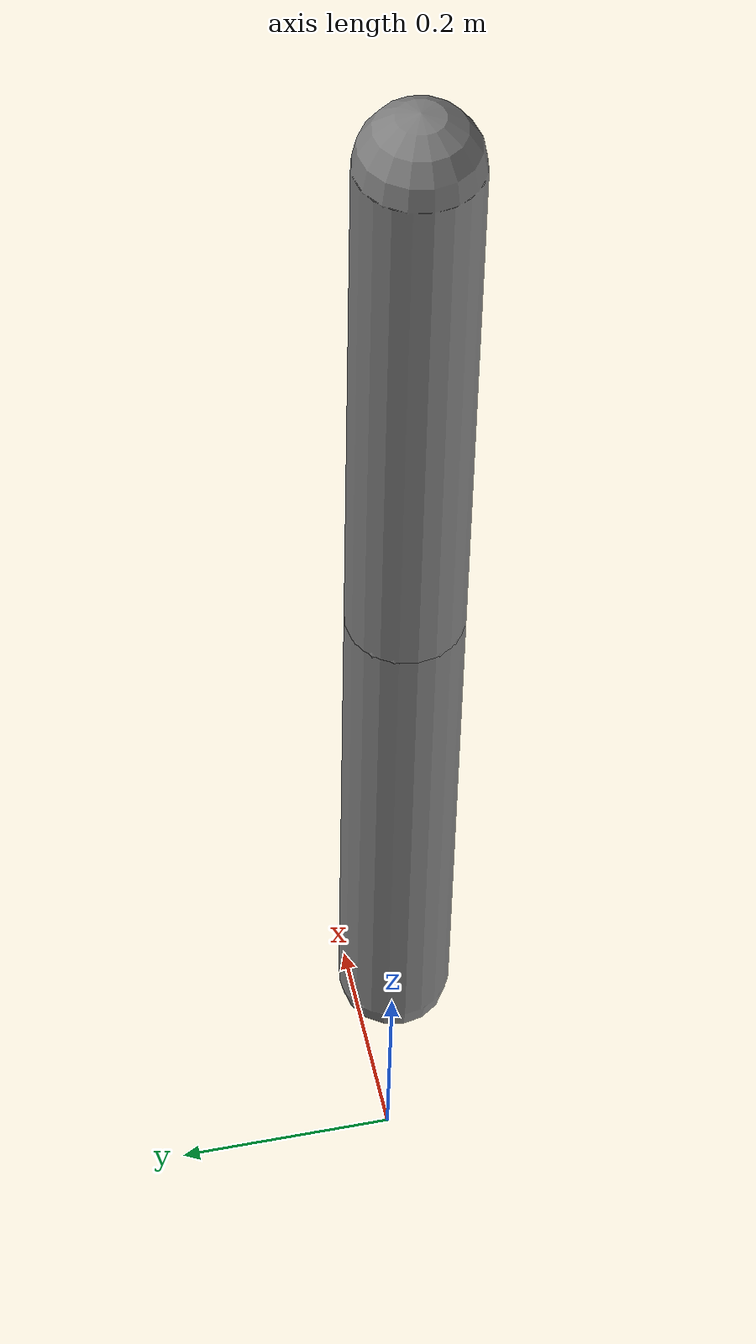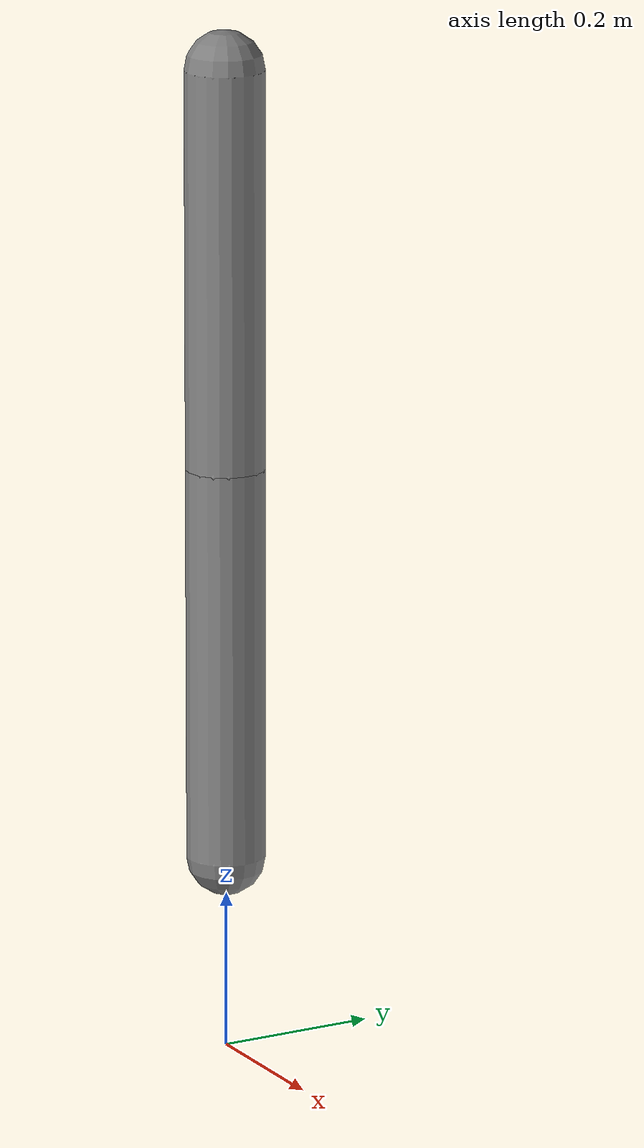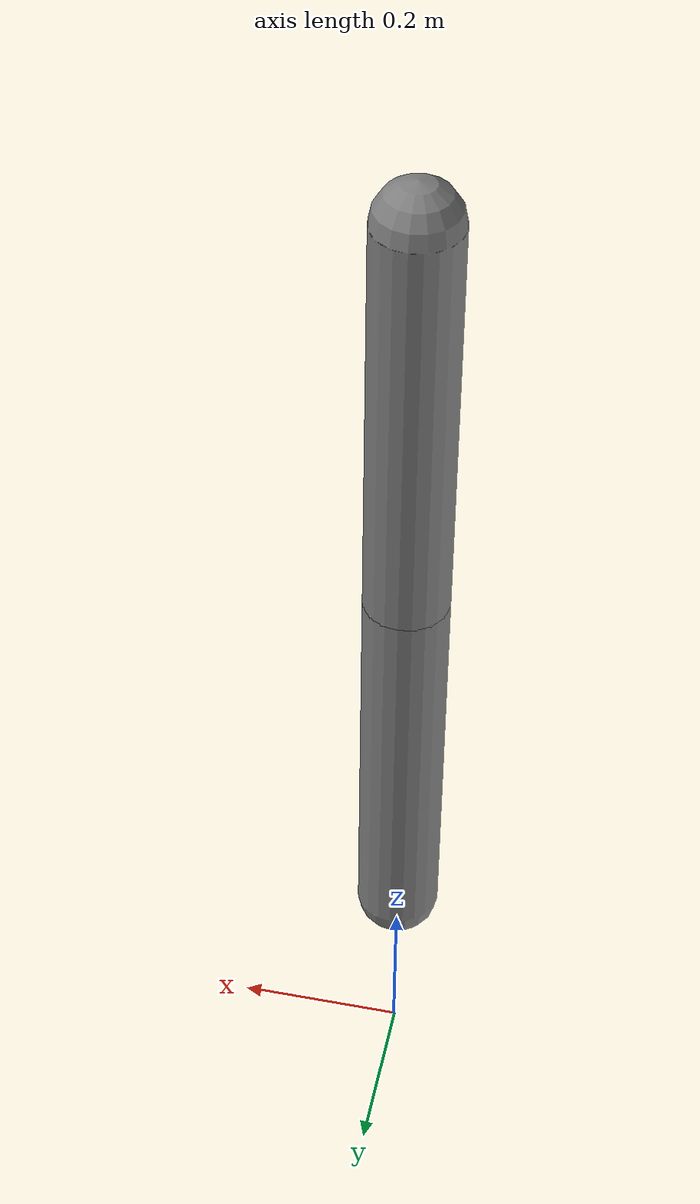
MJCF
<mujoco model="double_pendulum">
                <worldbody>
                    <body name="link1" pos="0 0 1">
                        <joint name="j1" type="hinge" axis="0 1 0"/>
                        <inertial pos="0 0 -0.25" mass="1.0" diaginertia="0.1 0.1 0.01"/>
                        <geom type="capsule" size="0.05 0.25"/>
                        <body name="link2" pos="0 0 -0.5">
                            <joint name="j2" type="hinge" axis="0 1 0"/>
                            <inertial pos="0 0 -0.25" mass="1.0" diaginertia="0.1 0.1 0.01"/>
                            <geom type="capsule" size="0.05 0.25"/>
                        </body>
                    </body>
                </worldbody>
            </mujoco>
